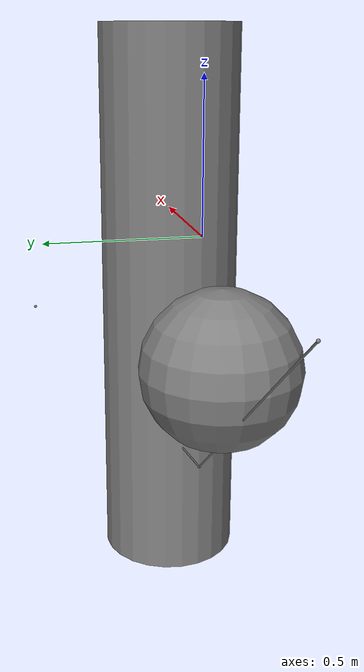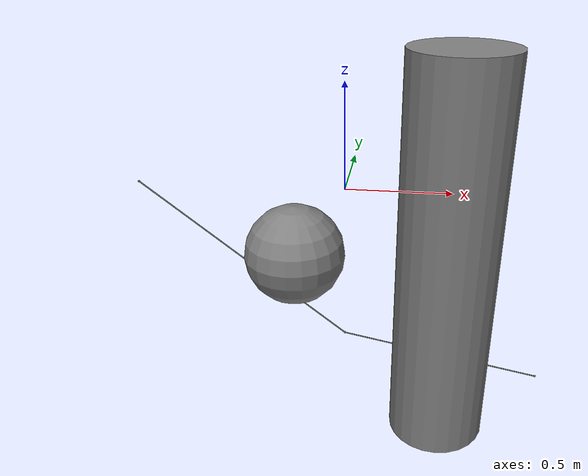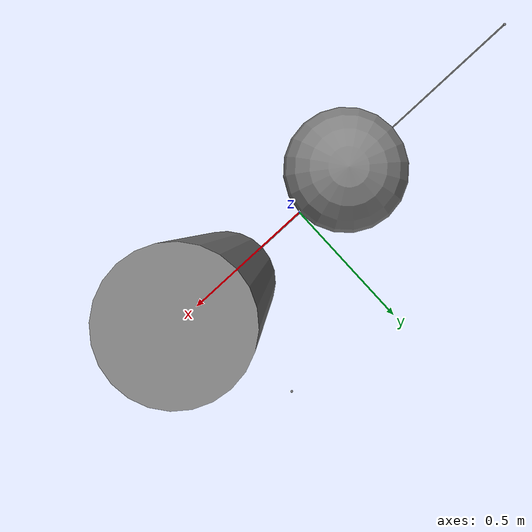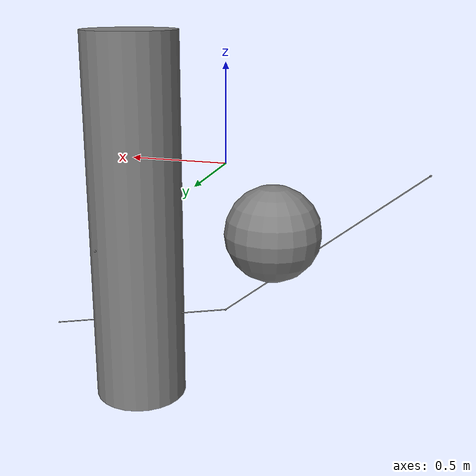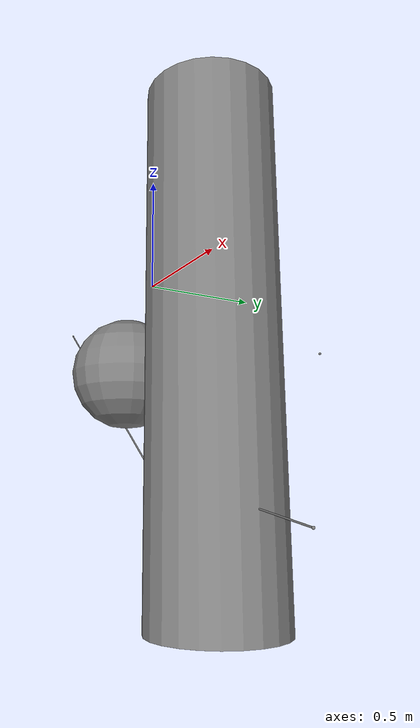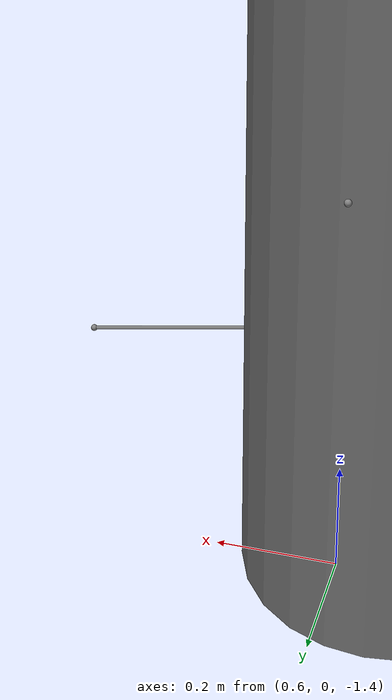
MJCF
<!-- Differential scenario: a passive spatial tendon passes over a sphere
  and then an infinite cylinder before reaching a sliding mass. -->
<mujoco model="tendon_mixed_wrap">
  <compiler angle="radian"/>
  <option timestep="0.005" gravity="0 0 -9.81"
          integrator="Euler" solver="PGS" cone="pyramidal" iterations="20"/>
  <worldbody>
    <body name="rig" pos="0 0 0">
      <inertial pos="0 0 0" mass="1.0" diaginertia="1.0 1.0 1.0"/>
      <geom name="wrap_sphere" type="sphere" size="0.25" pos="-0.25 0 -0.35"/>
      <geom name="wrap_cylinder" type="cylinder" size="0.25 1.0" pos="0.5 0 -0.35"/>
      <site name="anchor" pos="-1 0 0"/>
      <site name="side" pos="0.5 0.5 -0.35"/>
      <site name="mid" pos="0.0 0 -0.8"/>
      <body name="mass" pos="1.0 0 -1.0">
        <inertial pos="0 0 0" mass="1.0" diaginertia="1e-3 1e-3 1e-3"/>
        <joint name="lift" type="slide" axis="0 0 -1" pos="0 0 0" damping="4.0"/>
        <site name="attach" pos="0 0 0"/>
      </body>
    </body>
  </worldbody>
  <tendon>
    <spatial name="cable" springlength="2.4" stiffness="150" damping="10">
      <site site="anchor"/>
      <geom geom="wrap_sphere"/>
      <site site="mid"/>
      <geom geom="wrap_cylinder" sidesite="side"/>
      <site site="attach"/>
    </spatial>
  </tendon>
</mujoco>
